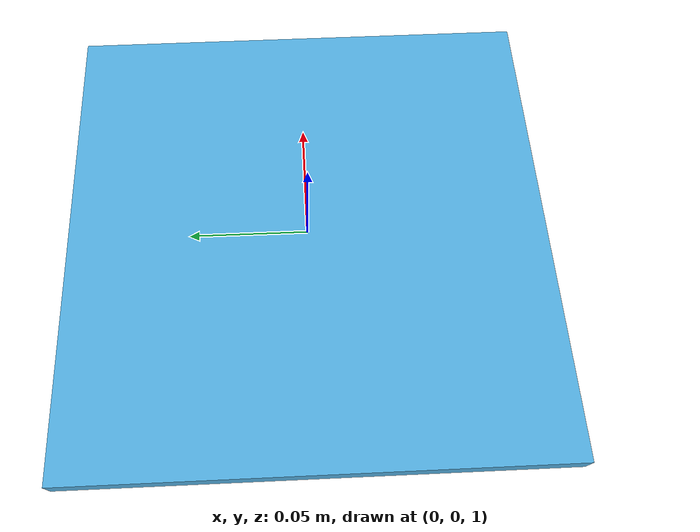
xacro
<?xml version="1.0"?>
<robot name="apriltags" xmlns:xacro="http://www.ros.org/wiki/xacro">

  <xacro:macro name="create_apriltag" params="name parent xyz rpy size:=0.2">
    <joint name="${name}_joint" type="fixed">
      <origin xyz="${xyz}" rpy="${rpy}"/>
      <parent link="${parent}"/>
      <child link="${name}_link"/>
    </joint>

    <link name="${name}_link">
      <collision>
        <origin xyz="0 0 0" rpy="0 0 0"/>
        <geometry>
          <box size="${size} ${size} 0.01"/>
        </geometry>
      </collision>

      <visual>
        <origin xyz="0 0 0" rpy="0 0 0"/>
        <geometry>
          <box size="${size} ${size} 0.01"/>
        </geometry>
        <material name="Apriltag">
          <script>
            <uri>model://materials/scripts</uri>
            <uri>model://materials/textures</uri>
            <name>Apriltag</name>
          </script>
        </material>
      </visual>

      <inertial>
        <mass value="1e-5" />
        <origin xyz="0 0 0" rpy="0 0 0"/>
        <inertia ixx="1e-6" ixy="0" ixz="0" iyy="1e-6" iyz="0" izz="1e-6" />
      </inertial>
    </link>

    <gazebo reference="${name}_link">
      <material>Apriltag</material>
    </gazebo>
</xacro:macro>

  <!-- setup empty world -->
  <link name="world"/>

  <xacro:create_apriltag name="tag36_11_00000" parent="world" xyz="0 0 1" rpy="0 0 0"/>

</robot>
